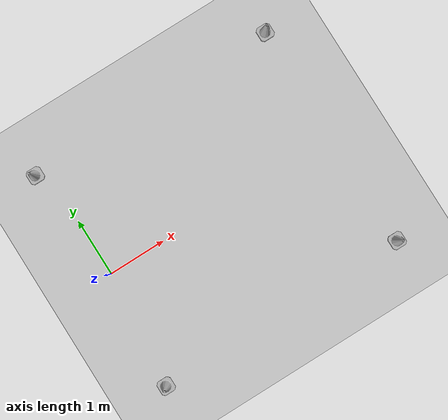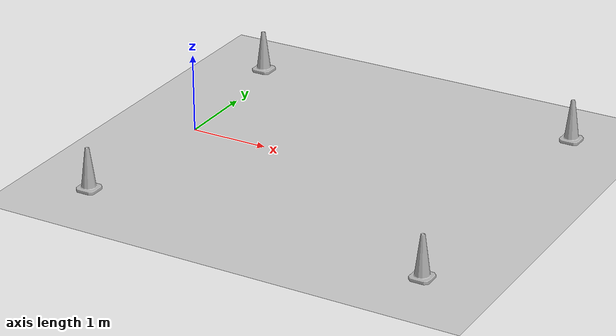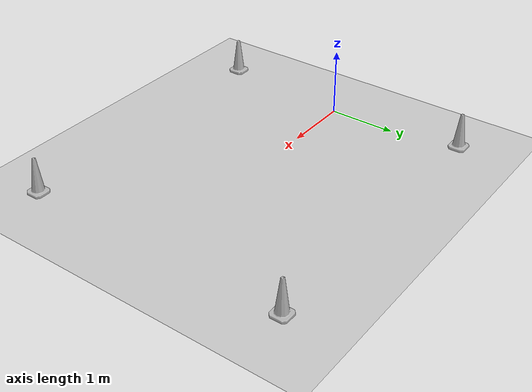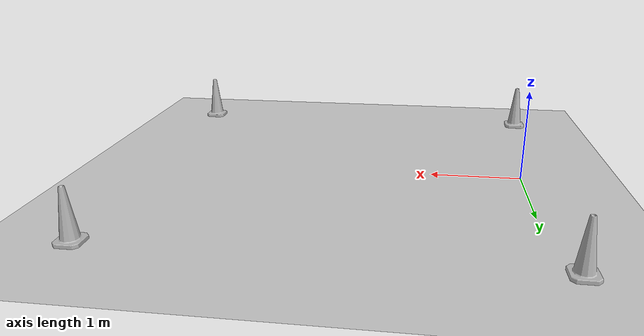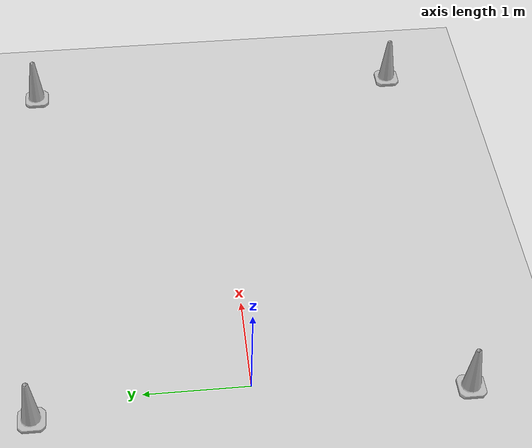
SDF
<sdf version="1.6">
 <world name="default">
  <model name="ground_plane">
   <static>1</static>
   <link name="link">
    <collision name="collision">
     <geometry><plane><normal>0 0 1</normal><size>100 100</size></plane></geometry>
     <surface><friction><ode><mu>100</mu><mu2>50</mu2></ode></friction></surface>
    </collision>
    <visual name="visual">
     <cast_shadows>0</cast_shadows>
     <geometry><plane><normal>0 0 1</normal><size>100 100</size></plane></geometry>
     <material>
      <script><uri>file://media/materials/scripts/gazebo.material</uri><name>Gazebo/Grey</name></script>
     </material>
    </visual>
   </link>
  </model>
  <light name="sun" type="directional">
   <pose>0 0 10 0 -0 0</pose>
   <diffuse>0.8 0.8 0.8 1</diffuse>
   <specular>0.2 0.2 0.2 1</specular>
   <attenuation>
    <range>1000</range>
    <constant>0.9</constant>
    <linear>0.01</linear>
    <quadratic>0.001</quadratic>
   </attenuation>
   <direction>-0.5 0.1 -0.9</direction>
  </light>
  <plugin name="ros_interface_plugin" filename="librotors_gazebo_ros_interface_plugin.so"/>
  <spherical_coordinates>
   <surface_model>EARTH_WGS84</surface_model>
   <latitude_deg>47.3667</latitude_deg>
   <longitude_deg>8.55</longitude_deg>
   <elevation>500</elevation>
   <heading_deg>0</heading_deg>
  </spherical_coordinates>
  <model name="Construction Cone">
   <link name="link">
    <collision name="collision">
     <geometry>
      <mesh><scale>5 5 5</scale><uri>model://construction_cone/meshes/construction_cone.dae</uri></mesh>
     </geometry>
    </collision>
    <visual name="visual">
     <geometry>
      <mesh><scale>5 5 5</scale><uri>model://construction_cone/meshes/construction_cone.dae</uri></mesh>
     </geometry>
    </visual>
    <inertial>
     <inertia><ixx>1</ixx><ixy>0</ixy><ixz>0</ixz><iyy>1</iyy><iyz>0</iyz><izz>1</izz></inertia>
     <mass>1</mass>
    </inertial>
   </link>
   <pose>-0.2 2 0 0 -0 0</pose>
  </model>
  <model name="Construction Cone_0">
   <link name="link">
    <collision name="collision">
     <geometry>
      <mesh><scale>5 5 5</scale><uri>model://construction_cone/meshes/construction_cone.dae</uri></mesh>
     </geometry>
    </collision>
    <visual name="visual">
     <geometry>
      <mesh><scale>5 5 5</scale><uri>model://construction_cone/meshes/construction_cone.dae</uri></mesh>
     </geometry>
    </visual>
    <inertial>
     <inertia><ixx>1</ixx><ixy>0</ixy><ixz>0</ixz><iyy>1</iyy><iyz>0</iyz><izz>1</izz></inertia>
     <mass>1</mass>
    </inertial>
   </link>
   <pose>4.2 2 -0.000949 -2e-05 -5.2e-05 0</pose>
  </model>
  <physics name="default_physics" default="0" type="ode">
   <ode>
    <solver>
     <type>quick</type>
     <iters>1000</iters>
     <sor>1.3</sor>
     <use_dynamic_moi_rescaling>0</use_dynamic_moi_rescaling>
    </solver>
    <constraints>
     <cfm>0</cfm>
     <erp>0.2</erp>
     <contact_max_correcting_vel>100</contact_max_correcting_vel>
     <contact_surface_layer>0.001</contact_surface_layer>
    </constraints>
   </ode>
   <max_step_size>0.01</max_step_size>
   <real_time_factor>1</real_time_factor>
   <real_time_update_rate>100</real_time_update_rate>
  </physics>
  <scene><shadows>0</shadows><ambient>0.4 0.4 0.4 1</ambient><background>0.7 0.7 0.7 1</background></scene>
  <gravity>0 0 -9.8</gravity>
  <magnetic_field>6e-06 2.3e-05 -4.2e-05</magnetic_field>
  <atmosphere type="adiabatic"/>
  <model name="Construction Cone_clone">
   <link name="link">
    <collision name="collision">
     <geometry>
      <mesh><scale>5 5 5</scale><uri>model://construction_cone/meshes/construction_cone.dae</uri></mesh>
     </geometry>
    </collision>
    <visual name="visual">
     <geometry>
      <mesh><scale>5 5 5</scale><uri>model://construction_cone/meshes/construction_cone.dae</uri></mesh>
     </geometry>
    </visual>
    <inertial>
     <inertia><ixx>1</ixx><ixy>0</ixy><ixz>0</ixz><iyy>1</iyy><iyz>0</iyz><izz>1</izz></inertia>
     <mass>1</mass>
    </inertial>
   </link>
   <pose>-0.2 -2 -0.000949 -2e-05 -5.2e-05 0</pose>
  </model>
  <model name="Construction Cone_clone_0">
   <link name="link">
    <collision name="collision">
     <geometry>
      <mesh><scale>5 5 5</scale><uri>model://construction_cone/meshes/construction_cone.dae</uri></mesh>
     </geometry>
    </collision>
    <visual name="visual">
     <geometry>
      <mesh><scale>5 5 5</scale><uri>model://construction_cone/meshes/construction_cone.dae</uri></mesh>
     </geometry>
    </visual>
    <inertial>
     <inertia><ixx>1</ixx><ixy>0</ixy><ixz>0</ixz><iyy>1</iyy><iyz>0</iyz><izz>1</izz></inertia>
     <mass>1</mass>
    </inertial>
   </link>
   <pose>4.2 -2 -0.000968 0 -2.7e-05 0</pose>
  </model>
 </world>
</sdf>
